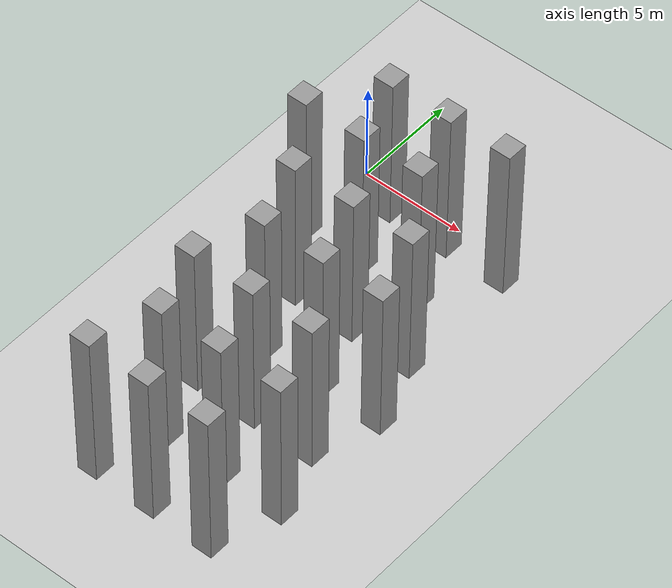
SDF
<sdf version="1.7">
 <world name="default">
  <model name="ground_plane">
   <static>1</static>
   <link name="link">
    <collision name="collision">
     <geometry><plane><normal>0 0 1</normal><size>100 100</size></plane></geometry>
     <surface>
      <contact><collide_bitmask>65535</collide_bitmask></contact>
      <friction><ode><mu>100</mu><mu2>50</mu2></ode></friction>
     </surface>
    </collision>
    <visual name="visual">
     <cast_shadows>0</cast_shadows>
     <geometry><plane><normal>0 0 1</normal><size>100 100</size></plane></geometry>
     <material>
      <script><uri>file://media/materials/scripts/gazebo.material</uri><name>Gazebo/Grey</name></script>
     </material>
    </visual>
   </link>
  </model>
  <model name="unit_box_static7">
   <link name="link">
    <inertial>
     <mass>1</mass>
     <inertia>
      <ixx>0.166667</ixx>
      <ixy>0</ixy>
      <ixz>0</ixz>
      <iyy>0.166667</iyy>
      <iyz>0</iyz>
      <izz>0.166667</izz>
     </inertia>
    </inertial>
    <visual name="visual">
     <geometry><box><size>1 1 8</size></box></geometry>
     <material>
      <script><name>Gazebo/Grey</name><uri>file://media/materials/scripts/gazebo.material</uri></script>
      <shader type="pixel"/>
     </material>
    </visual>
    <collision name="collision">
     <geometry><box><size>1 1 8</size></box></geometry>
     <surface>
      <friction>
       <ode><mu>1</mu><mu2>1</mu2><fdir1>0 0 0</fdir1><slip1>0</slip1><slip2>0</slip2></ode>
       <torsional>
        <coefficient>1</coefficient>
        <patch_radius>0</patch_radius>
        <surface_radius>0</surface_radius>
        <use_patch_radius>1</use_patch_radius>
        <ode><slip>0</slip></ode>
       </torsional>
      </friction>
      <bounce><restitution_coefficient>0</restitution_coefficient><threshold>1e+06</threshold></bounce>
      <contact>
       <collide_without_contact>0</collide_without_contact>
       <collide_without_contact_bitmask>1</collide_without_contact_bitmask>
       <collide_bitmask>1</collide_bitmask>
       <ode>
        <soft_cfm>0</soft_cfm>
        <soft_erp>0.2</soft_erp>
        <kp>1e+13</kp>
        <kd>1</kd>
        <max_vel>0.01</max_vel>
        <min_depth>0</min_depth>
       </ode>
       <bullet>
        <split_impulse>1</split_impulse>
        <split_impulse_penetration_threshold>-0.01</split_impulse_penetration_threshold>
        <soft_cfm>0</soft_cfm>
        <soft_erp>0.2</soft_erp>
        <kp>1e+13</kp>
        <kd>1</kd>
       </bullet>
      </contact>
     </surface>
    </collision>
   </link>
   <static>1</static>
   <pose>2 -19 4 0 -0 0</pose>
  </model>
  <model name="unit_box_static8">
   <link name="link">
    <inertial>
     <mass>1</mass>
     <inertia>
      <ixx>0.166667</ixx>
      <ixy>0</ixy>
      <ixz>0</ixz>
      <iyy>0.166667</iyy>
      <iyz>0</iyz>
      <izz>0.166667</izz>
     </inertia>
    </inertial>
    <visual name="visual">
     <geometry><box><size>1 1 8</size></box></geometry>
     <material>
      <script><name>Gazebo/Grey</name><uri>file://media/materials/scripts/gazebo.material</uri></script>
      <shader type="pixel"/>
     </material>
    </visual>
    <collision name="collision">
     <geometry><box><size>1 1 8</size></box></geometry>
     <surface>
      <friction>
       <ode><mu>1</mu><mu2>1</mu2><fdir1>0 0 0</fdir1><slip1>0</slip1><slip2>0</slip2></ode>
       <torsional>
        <coefficient>1</coefficient>
        <patch_radius>0</patch_radius>
        <surface_radius>0</surface_radius>
        <use_patch_radius>1</use_patch_radius>
        <ode><slip>0</slip></ode>
       </torsional>
      </friction>
      <bounce><restitution_coefficient>0</restitution_coefficient><threshold>1e+06</threshold></bounce>
      <contact>
       <collide_without_contact>0</collide_without_contact>
       <collide_without_contact_bitmask>1</collide_without_contact_bitmask>
       <collide_bitmask>1</collide_bitmask>
       <ode>
        <soft_cfm>0</soft_cfm>
        <soft_erp>0.2</soft_erp>
        <kp>1e+13</kp>
        <kd>1</kd>
        <max_vel>0.01</max_vel>
        <min_depth>0</min_depth>
       </ode>
       <bullet>
        <split_impulse>1</split_impulse>
        <split_impulse_penetration_threshold>-0.01</split_impulse_penetration_threshold>
        <soft_cfm>0</soft_cfm>
        <soft_erp>0.2</soft_erp>
        <kp>1e+13</kp>
        <kd>1</kd>
       </bullet>
      </contact>
     </surface>
    </collision>
   </link>
   <static>1</static>
   <pose>5 -19 4 0 -0 0</pose>
  </model>
  <model name="unit_box_static9">
   <link name="link">
    <inertial>
     <mass>1</mass>
     <inertia>
      <ixx>0.166667</ixx>
      <ixy>0</ixy>
      <ixz>0</ixz>
      <iyy>0.166667</iyy>
      <iyz>0</iyz>
      <izz>0.166667</izz>
     </inertia>
    </inertial>
    <visual name="visual">
     <geometry><box><size>1 1 8</size></box></geometry>
     <material>
      <script><name>Gazebo/Grey</name><uri>file://media/materials/scripts/gazebo.material</uri></script>
      <shader type="pixel"/>
     </material>
    </visual>
    <collision name="collision">
     <geometry><box><size>1 1 8</size></box></geometry>
     <surface>
      <friction>
       <ode><mu>1</mu><mu2>1</mu2><fdir1>0 0 0</fdir1><slip1>0</slip1><slip2>0</slip2></ode>
       <torsional>
        <coefficient>1</coefficient>
        <patch_radius>0</patch_radius>
        <surface_radius>0</surface_radius>
        <use_patch_radius>1</use_patch_radius>
        <ode><slip>0</slip></ode>
       </torsional>
      </friction>
      <bounce><restitution_coefficient>0</restitution_coefficient><threshold>1e+06</threshold></bounce>
      <contact>
       <collide_without_contact>0</collide_without_contact>
       <collide_without_contact_bitmask>1</collide_without_contact_bitmask>
       <collide_bitmask>1</collide_bitmask>
       <ode>
        <soft_cfm>0</soft_cfm>
        <soft_erp>0.2</soft_erp>
        <kp>1e+13</kp>
        <kd>1</kd>
        <max_vel>0.01</max_vel>
        <min_depth>0</min_depth>
       </ode>
       <bullet>
        <split_impulse>1</split_impulse>
        <split_impulse_penetration_threshold>-0.01</split_impulse_penetration_threshold>
        <soft_cfm>0</soft_cfm>
        <soft_erp>0.2</soft_erp>
        <kp>1e+13</kp>
        <kd>1</kd>
       </bullet>
      </contact>
     </surface>
    </collision>
   </link>
   <static>1</static>
   <pose>8 -19 4 0 -0 0</pose>
  </model>
  <model name="unit_box_static20">
   <link name="link">
    <inertial>
     <mass>1</mass>
     <inertia>
      <ixx>0.166667</ixx>
      <ixy>0</ixy>
      <ixz>0</ixz>
      <iyy>0.166667</iyy>
      <iyz>0</iyz>
      <izz>0.166667</izz>
     </inertia>
    </inertial>
    <visual name="visual">
     <geometry><box><size>1 1 8</size></box></geometry>
     <material>
      <script><name>Gazebo/Grey</name><uri>file://media/materials/scripts/gazebo.material</uri></script>
      <shader type="pixel"/>
     </material>
    </visual>
    <collision name="collision">
     <geometry><box><size>1 1 8</size></box></geometry>
     <surface>
      <friction>
       <ode><mu>1</mu><mu2>1</mu2><fdir1>0 0 0</fdir1><slip1>0</slip1><slip2>0</slip2></ode>
       <torsional>
        <coefficient>1</coefficient>
        <patch_radius>0</patch_radius>
        <surface_radius>0</surface_radius>
        <use_patch_radius>1</use_patch_radius>
        <ode><slip>0</slip></ode>
       </torsional>
      </friction>
      <bounce><restitution_coefficient>0</restitution_coefficient><threshold>1e+06</threshold></bounce>
      <contact>
       <collide_without_contact>0</collide_without_contact>
       <collide_without_contact_bitmask>1</collide_without_contact_bitmask>
       <collide_bitmask>1</collide_bitmask>
       <ode>
        <soft_cfm>0</soft_cfm>
        <soft_erp>0.2</soft_erp>
        <kp>1e+13</kp>
        <kd>1</kd>
        <max_vel>0.01</max_vel>
        <min_depth>0</min_depth>
       </ode>
       <bullet>
        <split_impulse>1</split_impulse>
        <split_impulse_penetration_threshold>-0.01</split_impulse_penetration_threshold>
        <soft_cfm>0</soft_cfm>
        <soft_erp>0.2</soft_erp>
        <kp>1e+13</kp>
        <kd>1</kd>
       </bullet>
      </contact>
     </surface>
    </collision>
   </link>
   <static>1</static>
   <pose>3 -16 4 0 -0 0</pose>
  </model>
  <model name="unit_box_static21">
   <link name="link">
    <inertial>
     <mass>1</mass>
     <inertia>
      <ixx>0.166667</ixx>
      <ixy>0</ixy>
      <ixz>0</ixz>
      <iyy>0.166667</iyy>
      <iyz>0</iyz>
      <izz>0.166667</izz>
     </inertia>
    </inertial>
    <visual name="visual">
     <geometry><box><size>1 1 8</size></box></geometry>
     <material>
      <script><name>Gazebo/Grey</name><uri>file://media/materials/scripts/gazebo.material</uri></script>
      <shader type="pixel"/>
     </material>
    </visual>
    <collision name="collision">
     <geometry><box><size>1 1 8</size></box></geometry>
     <surface>
      <friction>
       <ode><mu>1</mu><mu2>1</mu2><fdir1>0 0 0</fdir1><slip1>0</slip1><slip2>0</slip2></ode>
       <torsional>
        <coefficient>1</coefficient>
        <patch_radius>0</patch_radius>
        <surface_radius>0</surface_radius>
        <use_patch_radius>1</use_patch_radius>
        <ode><slip>0</slip></ode>
       </torsional>
      </friction>
      <bounce><restitution_coefficient>0</restitution_coefficient><threshold>1e+06</threshold></bounce>
      <contact>
       <collide_without_contact>0</collide_without_contact>
       <collide_without_contact_bitmask>1</collide_without_contact_bitmask>
       <collide_bitmask>1</collide_bitmask>
       <ode>
        <soft_cfm>0</soft_cfm>
        <soft_erp>0.2</soft_erp>
        <kp>1e+13</kp>
        <kd>1</kd>
        <max_vel>0.01</max_vel>
        <min_depth>0</min_depth>
       </ode>
       <bullet>
        <split_impulse>1</split_impulse>
        <split_impulse_penetration_threshold>-0.01</split_impulse_penetration_threshold>
        <soft_cfm>0</soft_cfm>
        <soft_erp>0.2</soft_erp>
        <kp>1e+13</kp>
        <kd>1</kd>
       </bullet>
      </contact>
     </surface>
    </collision>
   </link>
   <static>1</static>
   <pose>6 -16 4 0 -0 0</pose>
  </model>
  <model name="unit_box_static22">
   <link name="link">
    <inertial>
     <mass>1</mass>
     <inertia>
      <ixx>0.166667</ixx>
      <ixy>0</ixy>
      <ixz>0</ixz>
      <iyy>0.166667</iyy>
      <iyz>0</iyz>
      <izz>0.166667</izz>
     </inertia>
    </inertial>
    <visual name="visual">
     <geometry><box><size>1 1 8</size></box></geometry>
     <material>
      <script><name>Gazebo/Grey</name><uri>file://media/materials/scripts/gazebo.material</uri></script>
      <shader type="pixel"/>
     </material>
    </visual>
    <collision name="collision">
     <geometry><box><size>1 1 8</size></box></geometry>
     <surface>
      <friction>
       <ode><mu>1</mu><mu2>1</mu2><fdir1>0 0 0</fdir1><slip1>0</slip1><slip2>0</slip2></ode>
       <torsional>
        <coefficient>1</coefficient>
        <patch_radius>0</patch_radius>
        <surface_radius>0</surface_radius>
        <use_patch_radius>1</use_patch_radius>
        <ode><slip>0</slip></ode>
       </torsional>
      </friction>
      <bounce><restitution_coefficient>0</restitution_coefficient><threshold>1e+06</threshold></bounce>
      <contact>
       <collide_without_contact>0</collide_without_contact>
       <collide_without_contact_bitmask>1</collide_without_contact_bitmask>
       <collide_bitmask>1</collide_bitmask>
       <ode>
        <soft_cfm>0</soft_cfm>
        <soft_erp>0.2</soft_erp>
        <kp>1e+13</kp>
        <kd>1</kd>
        <max_vel>0.01</max_vel>
        <min_depth>0</min_depth>
       </ode>
       <bullet>
        <split_impulse>1</split_impulse>
        <split_impulse_penetration_threshold>-0.01</split_impulse_penetration_threshold>
        <soft_cfm>0</soft_cfm>
        <soft_erp>0.2</soft_erp>
        <kp>1e+13</kp>
        <kd>1</kd>
       </bullet>
      </contact>
     </surface>
    </collision>
   </link>
   <static>1</static>
   <pose>9 -16 4 0 -0 0</pose>
  </model>
  <model name="unit_box_static32">
   <link name="link">
    <inertial>
     <mass>1</mass>
     <inertia>
      <ixx>0.166667</ixx>
      <ixy>0</ixy>
      <ixz>0</ixz>
      <iyy>0.166667</iyy>
      <iyz>0</iyz>
      <izz>0.166667</izz>
     </inertia>
    </inertial>
    <visual name="visual">
     <geometry><box><size>1 1 8</size></box></geometry>
     <material>
      <script><name>Gazebo/Grey</name><uri>file://media/materials/scripts/gazebo.material</uri></script>
      <shader type="pixel"/>
     </material>
    </visual>
    <collision name="collision">
     <geometry><box><size>1 1 8</size></box></geometry>
     <surface>
      <friction>
       <ode><mu>1</mu><mu2>1</mu2><fdir1>0 0 0</fdir1><slip1>0</slip1><slip2>0</slip2></ode>
       <torsional>
        <coefficient>1</coefficient>
        <patch_radius>0</patch_radius>
        <surface_radius>0</surface_radius>
        <use_patch_radius>1</use_patch_radius>
        <ode><slip>0</slip></ode>
       </torsional>
      </friction>
      <bounce><restitution_coefficient>0</restitution_coefficient><threshold>1e+06</threshold></bounce>
      <contact>
       <collide_without_contact>0</collide_without_contact>
       <collide_without_contact_bitmask>1</collide_without_contact_bitmask>
       <collide_bitmask>1</collide_bitmask>
       <ode>
        <soft_cfm>0</soft_cfm>
        <soft_erp>0.2</soft_erp>
        <kp>1e+13</kp>
        <kd>1</kd>
        <max_vel>0.01</max_vel>
        <min_depth>0</min_depth>
       </ode>
       <bullet>
        <split_impulse>1</split_impulse>
        <split_impulse_penetration_threshold>-0.01</split_impulse_penetration_threshold>
        <soft_cfm>0</soft_cfm>
        <soft_erp>0.2</soft_erp>
        <kp>1e+13</kp>
        <kd>1</kd>
       </bullet>
      </contact>
     </surface>
    </collision>
   </link>
   <static>1</static>
   <pose>2 -13 4 0 -0 0</pose>
  </model>
  <model name="unit_box_static33">
   <link name="link">
    <inertial>
     <mass>1</mass>
     <inertia>
      <ixx>0.166667</ixx>
      <ixy>0</ixy>
      <ixz>0</ixz>
      <iyy>0.166667</iyy>
      <iyz>0</iyz>
      <izz>0.166667</izz>
     </inertia>
    </inertial>
    <visual name="visual">
     <geometry><box><size>1 1 8</size></box></geometry>
     <material>
      <script><name>Gazebo/Grey</name><uri>file://media/materials/scripts/gazebo.material</uri></script>
      <shader type="pixel"/>
     </material>
    </visual>
    <collision name="collision">
     <geometry><box><size>1 1 8</size></box></geometry>
     <surface>
      <friction>
       <ode><mu>1</mu><mu2>1</mu2><fdir1>0 0 0</fdir1><slip1>0</slip1><slip2>0</slip2></ode>
       <torsional>
        <coefficient>1</coefficient>
        <patch_radius>0</patch_radius>
        <surface_radius>0</surface_radius>
        <use_patch_radius>1</use_patch_radius>
        <ode><slip>0</slip></ode>
       </torsional>
      </friction>
      <bounce><restitution_coefficient>0</restitution_coefficient><threshold>1e+06</threshold></bounce>
      <contact>
       <collide_without_contact>0</collide_without_contact>
       <collide_without_contact_bitmask>1</collide_without_contact_bitmask>
       <collide_bitmask>1</collide_bitmask>
       <ode>
        <soft_cfm>0</soft_cfm>
        <soft_erp>0.2</soft_erp>
        <kp>1e+13</kp>
        <kd>1</kd>
        <max_vel>0.01</max_vel>
        <min_depth>0</min_depth>
       </ode>
       <bullet>
        <split_impulse>1</split_impulse>
        <split_impulse_penetration_threshold>-0.01</split_impulse_penetration_threshold>
        <soft_cfm>0</soft_cfm>
        <soft_erp>0.2</soft_erp>
        <kp>1e+13</kp>
        <kd>1</kd>
       </bullet>
      </contact>
     </surface>
    </collision>
   </link>
   <static>1</static>
   <pose>5 -13 4 0 -0 0</pose>
  </model>
  <model name="unit_box_static34">
   <link name="link">
    <inertial>
     <mass>1</mass>
     <inertia>
      <ixx>0.166667</ixx>
      <ixy>0</ixy>
      <ixz>0</ixz>
      <iyy>0.166667</iyy>
      <iyz>0</iyz>
      <izz>0.166667</izz>
     </inertia>
    </inertial>
    <visual name="visual">
     <geometry><box><size>1 1 8</size></box></geometry>
     <material>
      <script><name>Gazebo/Grey</name><uri>file://media/materials/scripts/gazebo.material</uri></script>
      <shader type="pixel"/>
     </material>
    </visual>
    <collision name="collision">
     <geometry><box><size>1 1 8</size></box></geometry>
     <surface>
      <friction>
       <ode><mu>1</mu><mu2>1</mu2><fdir1>0 0 0</fdir1><slip1>0</slip1><slip2>0</slip2></ode>
       <torsional>
        <coefficient>1</coefficient>
        <patch_radius>0</patch_radius>
        <surface_radius>0</surface_radius>
        <use_patch_radius>1</use_patch_radius>
        <ode><slip>0</slip></ode>
       </torsional>
      </friction>
      <bounce><restitution_coefficient>0</restitution_coefficient><threshold>1e+06</threshold></bounce>
      <contact>
       <collide_without_contact>0</collide_without_contact>
       <collide_without_contact_bitmask>1</collide_without_contact_bitmask>
       <collide_bitmask>1</collide_bitmask>
       <ode>
        <soft_cfm>0</soft_cfm>
        <soft_erp>0.2</soft_erp>
        <kp>1e+13</kp>
        <kd>1</kd>
        <max_vel>0.01</max_vel>
        <min_depth>0</min_depth>
       </ode>
       <bullet>
        <split_impulse>1</split_impulse>
        <split_impulse_penetration_threshold>-0.01</split_impulse_penetration_threshold>
        <soft_cfm>0</soft_cfm>
        <soft_erp>0.2</soft_erp>
        <kp>1e+13</kp>
        <kd>1</kd>
       </bullet>
      </contact>
     </surface>
    </collision>
   </link>
   <static>1</static>
   <pose>8 -13 4 0 -0 0</pose>
  </model>
  <model name="unit_box_static45">
   <link name="link">
    <inertial>
     <mass>1</mass>
     <inertia>
      <ixx>0.166667</ixx>
      <ixy>0</ixy>
      <ixz>0</ixz>
      <iyy>0.166667</iyy>
      <iyz>0</iyz>
      <izz>0.166667</izz>
     </inertia>
    </inertial>
    <visual name="visual">
     <geometry><box><size>1 1 8</size></box></geometry>
     <material>
      <script><name>Gazebo/Grey</name><uri>file://media/materials/scripts/gazebo.material</uri></script>
      <shader type="pixel"/>
     </material>
    </visual>
    <collision name="collision">
     <geometry><box><size>1 1 8</size></box></geometry>
     <surface>
      <friction>
       <ode><mu>1</mu><mu2>1</mu2><fdir1>0 0 0</fdir1><slip1>0</slip1><slip2>0</slip2></ode>
       <torsional>
        <coefficient>1</coefficient>
        <patch_radius>0</patch_radius>
        <surface_radius>0</surface_radius>
        <use_patch_radius>1</use_patch_radius>
        <ode><slip>0</slip></ode>
       </torsional>
      </friction>
      <bounce><restitution_coefficient>0</restitution_coefficient><threshold>1e+06</threshold></bounce>
      <contact>
       <collide_without_contact>0</collide_without_contact>
       <collide_without_contact_bitmask>1</collide_without_contact_bitmask>
       <collide_bitmask>1</collide_bitmask>
       <ode>
        <soft_cfm>0</soft_cfm>
        <soft_erp>0.2</soft_erp>
        <kp>1e+13</kp>
        <kd>1</kd>
        <max_vel>0.01</max_vel>
        <min_depth>0</min_depth>
       </ode>
       <bullet>
        <split_impulse>1</split_impulse>
        <split_impulse_penetration_threshold>-0.01</split_impulse_penetration_threshold>
        <soft_cfm>0</soft_cfm>
        <soft_erp>0.2</soft_erp>
        <kp>1e+13</kp>
        <kd>1</kd>
       </bullet>
      </contact>
     </surface>
    </collision>
   </link>
   <static>1</static>
   <pose>3 -10 4 0 -0 0</pose>
  </model>
  <model name="unit_box_static46">
   <link name="link">
    <inertial>
     <mass>1</mass>
     <inertia>
      <ixx>0.166667</ixx>
      <ixy>0</ixy>
      <ixz>0</ixz>
      <iyy>0.166667</iyy>
      <iyz>0</iyz>
      <izz>0.166667</izz>
     </inertia>
    </inertial>
    <visual name="visual">
     <geometry><box><size>1 1 8</size></box></geometry>
     <material>
      <script><name>Gazebo/Grey</name><uri>file://media/materials/scripts/gazebo.material</uri></script>
      <shader type="pixel"/>
     </material>
    </visual>
    <collision name="collision">
     <geometry><box><size>1 1 8</size></box></geometry>
     <surface>
      <friction>
       <ode><mu>1</mu><mu2>1</mu2><fdir1>0 0 0</fdir1><slip1>0</slip1><slip2>0</slip2></ode>
       <torsional>
        <coefficient>1</coefficient>
        <patch_radius>0</patch_radius>
        <surface_radius>0</surface_radius>
        <use_patch_radius>1</use_patch_radius>
        <ode><slip>0</slip></ode>
       </torsional>
      </friction>
      <bounce><restitution_coefficient>0</restitution_coefficient><threshold>1e+06</threshold></bounce>
      <contact>
       <collide_without_contact>0</collide_without_contact>
       <collide_without_contact_bitmask>1</collide_without_contact_bitmask>
       <collide_bitmask>1</collide_bitmask>
       <ode>
        <soft_cfm>0</soft_cfm>
        <soft_erp>0.2</soft_erp>
        <kp>1e+13</kp>
        <kd>1</kd>
        <max_vel>0.01</max_vel>
        <min_depth>0</min_depth>
       </ode>
       <bullet>
        <split_impulse>1</split_impulse>
        <split_impulse_penetration_threshold>-0.01</split_impulse_penetration_threshold>
        <soft_cfm>0</soft_cfm>
        <soft_erp>0.2</soft_erp>
        <kp>1e+13</kp>
        <kd>1</kd>
       </bullet>
      </contact>
     </surface>
    </collision>
   </link>
   <static>1</static>
   <pose>6 -10 4 0 -0 0</pose>
  </model>
  <model name="unit_box_static47">
   <link name="link">
    <inertial>
     <mass>1</mass>
     <inertia>
      <ixx>0.166667</ixx>
      <ixy>0</ixy>
      <ixz>0</ixz>
      <iyy>0.166667</iyy>
      <iyz>0</iyz>
      <izz>0.166667</izz>
     </inertia>
    </inertial>
    <visual name="visual">
     <geometry><box><size>1 1 8</size></box></geometry>
     <material>
      <script><name>Gazebo/Grey</name><uri>file://media/materials/scripts/gazebo.material</uri></script>
      <shader type="pixel"/>
     </material>
    </visual>
    <collision name="collision">
     <geometry><box><size>1 1 8</size></box></geometry>
     <surface>
      <friction>
       <ode><mu>1</mu><mu2>1</mu2><fdir1>0 0 0</fdir1><slip1>0</slip1><slip2>0</slip2></ode>
       <torsional>
        <coefficient>1</coefficient>
        <patch_radius>0</patch_radius>
        <surface_radius>0</surface_radius>
        <use_patch_radius>1</use_patch_radius>
        <ode><slip>0</slip></ode>
       </torsional>
      </friction>
      <bounce><restitution_coefficient>0</restitution_coefficient><threshold>1e+06</threshold></bounce>
      <contact>
       <collide_without_contact>0</collide_without_contact>
       <collide_without_contact_bitmask>1</collide_without_contact_bitmask>
       <collide_bitmask>1</collide_bitmask>
       <ode>
        <soft_cfm>0</soft_cfm>
        <soft_erp>0.2</soft_erp>
        <kp>1e+13</kp>
        <kd>1</kd>
        <max_vel>0.01</max_vel>
        <min_depth>0</min_depth>
       </ode>
       <bullet>
        <split_impulse>1</split_impulse>
        <split_impulse_penetration_threshold>-0.01</split_impulse_penetration_threshold>
        <soft_cfm>0</soft_cfm>
        <soft_erp>0.2</soft_erp>
        <kp>1e+13</kp>
        <kd>1</kd>
       </bullet>
      </contact>
     </surface>
    </collision>
   </link>
   <static>1</static>
   <pose>9 -10 4 0 -0 0</pose>
  </model>
  <model name="unit_box_static57">
   <link name="link">
    <inertial>
     <mass>1</mass>
     <inertia>
      <ixx>0.166667</ixx>
      <ixy>0</ixy>
      <ixz>0</ixz>
      <iyy>0.166667</iyy>
      <iyz>0</iyz>
      <izz>0.166667</izz>
     </inertia>
    </inertial>
    <visual name="visual">
     <geometry><box><size>1 1 8</size></box></geometry>
     <material>
      <script><name>Gazebo/Grey</name><uri>file://media/materials/scripts/gazebo.material</uri></script>
      <shader type="pixel"/>
     </material>
    </visual>
    <collision name="collision">
     <geometry><box><size>1 1 8</size></box></geometry>
     <surface>
      <friction>
       <ode><mu>1</mu><mu2>1</mu2><fdir1>0 0 0</fdir1><slip1>0</slip1><slip2>0</slip2></ode>
       <torsional>
        <coefficient>1</coefficient>
        <patch_radius>0</patch_radius>
        <surface_radius>0</surface_radius>
        <use_patch_radius>1</use_patch_radius>
        <ode><slip>0</slip></ode>
       </torsional>
      </friction>
      <bounce><restitution_coefficient>0</restitution_coefficient><threshold>1e+06</threshold></bounce>
      <contact>
       <collide_without_contact>0</collide_without_contact>
       <collide_without_contact_bitmask>1</collide_without_contact_bitmask>
       <collide_bitmask>1</collide_bitmask>
       <ode>
        <soft_cfm>0</soft_cfm>
        <soft_erp>0.2</soft_erp>
        <kp>1e+13</kp>
        <kd>1</kd>
        <max_vel>0.01</max_vel>
        <min_depth>0</min_depth>
       </ode>
       <bullet>
        <split_impulse>1</split_impulse>
        <split_impulse_penetration_threshold>-0.01</split_impulse_penetration_threshold>
        <soft_cfm>0</soft_cfm>
        <soft_erp>0.2</soft_erp>
        <kp>1e+13</kp>
        <kd>1</kd>
       </bullet>
      </contact>
     </surface>
    </collision>
   </link>
   <static>1</static>
   <pose>2 -7 4 0 -0 0</pose>
  </model>
  <model name="unit_box_static58">
   <link name="link">
    <inertial>
     <mass>1</mass>
     <inertia>
      <ixx>0.166667</ixx>
      <ixy>0</ixy>
      <ixz>0</ixz>
      <iyy>0.166667</iyy>
      <iyz>0</iyz>
      <izz>0.166667</izz>
     </inertia>
    </inertial>
    <visual name="visual">
     <geometry><box><size>1 1 8</size></box></geometry>
     <material>
      <script><name>Gazebo/Grey</name><uri>file://media/materials/scripts/gazebo.material</uri></script>
      <shader type="pixel"/>
     </material>
    </visual>
    <collision name="collision">
     <geometry><box><size>1 1 8</size></box></geometry>
     <surface>
      <friction>
       <ode><mu>1</mu><mu2>1</mu2><fdir1>0 0 0</fdir1><slip1>0</slip1><slip2>0</slip2></ode>
       <torsional>
        <coefficient>1</coefficient>
        <patch_radius>0</patch_radius>
        <surface_radius>0</surface_radius>
        <use_patch_radius>1</use_patch_radius>
        <ode><slip>0</slip></ode>
       </torsional>
      </friction>
      <bounce><restitution_coefficient>0</restitution_coefficient><threshold>1e+06</threshold></bounce>
      <contact>
       <collide_without_contact>0</collide_without_contact>
       <collide_without_contact_bitmask>1</collide_without_contact_bitmask>
       <collide_bitmask>1</collide_bitmask>
       <ode>
        <soft_cfm>0</soft_cfm>
        <soft_erp>0.2</soft_erp>
        <kp>1e+13</kp>
        <kd>1</kd>
        <max_vel>0.01</max_vel>
        <min_depth>0</min_depth>
       </ode>
       <bullet>
        <split_impulse>1</split_impulse>
        <split_impulse_penetration_threshold>-0.01</split_impulse_penetration_threshold>
        <soft_cfm>0</soft_cfm>
        <soft_erp>0.2</soft_erp>
        <kp>1e+13</kp>
        <kd>1</kd>
       </bullet>
      </contact>
     </surface>
    </collision>
   </link>
   <static>1</static>
   <pose>5 -7 4 0 -0 0</pose>
  </model>
  <model name="unit_box_static59">
   <link name="link">
    <inertial>
     <mass>1</mass>
     <inertia>
      <ixx>0.166667</ixx>
      <ixy>0</ixy>
      <ixz>0</ixz>
      <iyy>0.166667</iyy>
      <iyz>0</iyz>
      <izz>0.166667</izz>
     </inertia>
    </inertial>
    <visual name="visual">
     <geometry><box><size>1 1 8</size></box></geometry>
     <material>
      <script><name>Gazebo/Grey</name><uri>file://media/materials/scripts/gazebo.material</uri></script>
      <shader type="pixel"/>
     </material>
    </visual>
    <collision name="collision">
     <geometry><box><size>1 1 8</size></box></geometry>
     <surface>
      <friction>
       <ode><mu>1</mu><mu2>1</mu2><fdir1>0 0 0</fdir1><slip1>0</slip1><slip2>0</slip2></ode>
       <torsional>
        <coefficient>1</coefficient>
        <patch_radius>0</patch_radius>
        <surface_radius>0</surface_radius>
        <use_patch_radius>1</use_patch_radius>
        <ode><slip>0</slip></ode>
       </torsional>
      </friction>
      <bounce><restitution_coefficient>0</restitution_coefficient><threshold>1e+06</threshold></bounce>
      <contact>
       <collide_without_contact>0</collide_without_contact>
       <collide_without_contact_bitmask>1</collide_without_contact_bitmask>
       <collide_bitmask>1</collide_bitmask>
       <ode>
        <soft_cfm>0</soft_cfm>
        <soft_erp>0.2</soft_erp>
        <kp>1e+13</kp>
        <kd>1</kd>
        <max_vel>0.01</max_vel>
        <min_depth>0</min_depth>
       </ode>
       <bullet>
        <split_impulse>1</split_impulse>
        <split_impulse_penetration_threshold>-0.01</split_impulse_penetration_threshold>
        <soft_cfm>0</soft_cfm>
        <soft_erp>0.2</soft_erp>
        <kp>1e+13</kp>
        <kd>1</kd>
       </bullet>
      </contact>
     </surface>
    </collision>
   </link>
   <static>1</static>
   <pose>8 -7 4 0 -0 0</pose>
  </model>
  <model name="unit_box_static69">
   <link name="link">
    <inertial>
     <mass>1</mass>
     <inertia>
      <ixx>0.166667</ixx>
      <ixy>0</ixy>
      <ixz>0</ixz>
      <iyy>0.166667</iyy>
      <iyz>0</iyz>
      <izz>0.166667</izz>
     </inertia>
    </inertial>
    <visual name="visual">
     <geometry><box><size>1 1 8</size></box></geometry>
     <material>
      <script><name>Gazebo/Grey</name><uri>file://media/materials/scripts/gazebo.material</uri></script>
      <shader type="pixel"/>
     </material>
    </visual>
    <collision name="collision">
     <geometry><box><size>1 1 8</size></box></geometry>
     <surface>
      <friction>
       <ode><mu>1</mu><mu2>1</mu2><fdir1>0 0 0</fdir1><slip1>0</slip1><slip2>0</slip2></ode>
       <torsional>
        <coefficient>1</coefficient>
        <patch_radius>0</patch_radius>
        <surface_radius>0</surface_radius>
        <use_patch_radius>1</use_patch_radius>
        <ode><slip>0</slip></ode>
       </torsional>
      </friction>
      <bounce><restitution_coefficient>0</restitution_coefficient><threshold>1e+06</threshold></bounce>
      <contact>
       <collide_without_contact>0</collide_without_contact>
       <collide_without_contact_bitmask>1</collide_without_contact_bitmask>
       <collide_bitmask>1</collide_bitmask>
       <ode>
        <soft_cfm>0</soft_cfm>
        <soft_erp>0.2</soft_erp>
        <kp>1e+13</kp>
        <kd>1</kd>
        <max_vel>0.01</max_vel>
        <min_depth>0</min_depth>
       </ode>
       <bullet>
        <split_impulse>1</split_impulse>
        <split_impulse_penetration_threshold>-0.01</split_impulse_penetration_threshold>
        <soft_cfm>0</soft_cfm>
        <soft_erp>0.2</soft_erp>
        <kp>1e+13</kp>
        <kd>1</kd>
       </bullet>
      </contact>
     </surface>
    </collision>
   </link>
   <static>1</static>
   <pose>0 -4 4 0 -0 0</pose>
  </model>
  <model name="unit_box_static70">
   <link name="link">
    <inertial>
     <mass>1</mass>
     <inertia>
      <ixx>0.166667</ixx>
      <ixy>0</ixy>
      <ixz>0</ixz>
      <iyy>0.166667</iyy>
      <iyz>0</iyz>
      <izz>0.166667</izz>
     </inertia>
    </inertial>
    <visual name="visual">
     <geometry><box><size>1 1 8</size></box></geometry>
     <material>
      <script><name>Gazebo/Grey</name><uri>file://media/materials/scripts/gazebo.material</uri></script>
      <shader type="pixel"/>
     </material>
    </visual>
    <collision name="collision">
     <geometry><box><size>1 1 8</size></box></geometry>
     <surface>
      <friction>
       <ode><mu>1</mu><mu2>1</mu2><fdir1>0 0 0</fdir1><slip1>0</slip1><slip2>0</slip2></ode>
       <torsional>
        <coefficient>1</coefficient>
        <patch_radius>0</patch_radius>
        <surface_radius>0</surface_radius>
        <use_patch_radius>1</use_patch_radius>
        <ode><slip>0</slip></ode>
       </torsional>
      </friction>
      <bounce><restitution_coefficient>0</restitution_coefficient><threshold>1e+06</threshold></bounce>
      <contact>
       <collide_without_contact>0</collide_without_contact>
       <collide_without_contact_bitmask>1</collide_without_contact_bitmask>
       <collide_bitmask>1</collide_bitmask>
       <ode>
        <soft_cfm>0</soft_cfm>
        <soft_erp>0.2</soft_erp>
        <kp>1e+13</kp>
        <kd>1</kd>
        <max_vel>0.01</max_vel>
        <min_depth>0</min_depth>
       </ode>
       <bullet>
        <split_impulse>1</split_impulse>
        <split_impulse_penetration_threshold>-0.01</split_impulse_penetration_threshold>
        <soft_cfm>0</soft_cfm>
        <soft_erp>0.2</soft_erp>
        <kp>1e+13</kp>
        <kd>1</kd>
       </bullet>
      </contact>
     </surface>
    </collision>
   </link>
   <static>1</static>
   <pose>3 -4 4 0 -0 0</pose>
  </model>
  <model name="unit_box_static71">
   <link name="link">
    <inertial>
     <mass>1</mass>
     <inertia>
      <ixx>0.166667</ixx>
      <ixy>0</ixy>
      <ixz>0</ixz>
      <iyy>0.166667</iyy>
      <iyz>0</iyz>
      <izz>0.166667</izz>
     </inertia>
    </inertial>
    <visual name="visual">
     <geometry><box><size>1 1 8</size></box></geometry>
     <material>
      <script><name>Gazebo/Grey</name><uri>file://media/materials/scripts/gazebo.material</uri></script>
      <shader type="pixel"/>
     </material>
    </visual>
    <collision name="collision">
     <geometry><box><size>1 1 8</size></box></geometry>
     <surface>
      <friction>
       <ode><mu>1</mu><mu2>1</mu2><fdir1>0 0 0</fdir1><slip1>0</slip1><slip2>0</slip2></ode>
       <torsional>
        <coefficient>1</coefficient>
        <patch_radius>0</patch_radius>
        <surface_radius>0</surface_radius>
        <use_patch_radius>1</use_patch_radius>
        <ode><slip>0</slip></ode>
       </torsional>
      </friction>
      <bounce><restitution_coefficient>0</restitution_coefficient><threshold>1e+06</threshold></bounce>
      <contact>
       <collide_without_contact>0</collide_without_contact>
       <collide_without_contact_bitmask>1</collide_without_contact_bitmask>
       <collide_bitmask>1</collide_bitmask>
       <ode>
        <soft_cfm>0</soft_cfm>
        <soft_erp>0.2</soft_erp>
        <kp>1e+13</kp>
        <kd>1</kd>
        <max_vel>0.01</max_vel>
        <min_depth>0</min_depth>
       </ode>
       <bullet>
        <split_impulse>1</split_impulse>
        <split_impulse_penetration_threshold>-0.01</split_impulse_penetration_threshold>
        <soft_cfm>0</soft_cfm>
        <soft_erp>0.2</soft_erp>
        <kp>1e+13</kp>
        <kd>1</kd>
       </bullet>
      </contact>
     </surface>
    </collision>
   </link>
   <static>1</static>
   <pose>6 -4 4 0 -0 0</pose>
  </model>
  <model name="unit_box_static82">
   <link name="link">
    <inertial>
     <mass>1</mass>
     <inertia>
      <ixx>0.166667</ixx>
      <ixy>0</ixy>
      <ixz>0</ixz>
      <iyy>0.166667</iyy>
      <iyz>0</iyz>
      <izz>0.166667</izz>
     </inertia>
    </inertial>
    <visual name="visual">
     <geometry><box><size>1 1 8</size></box></geometry>
     <material>
      <script><name>Gazebo/Grey</name><uri>file://media/materials/scripts/gazebo.material</uri></script>
      <shader type="pixel"/>
     </material>
    </visual>
    <collision name="collision">
     <geometry><box><size>1 1 8</size></box></geometry>
     <surface>
      <friction>
       <ode><mu>1</mu><mu2>1</mu2><fdir1>0 0 0</fdir1><slip1>0</slip1><slip2>0</slip2></ode>
       <torsional>
        <coefficient>1</coefficient>
        <patch_radius>0</patch_radius>
        <surface_radius>0</surface_radius>
        <use_patch_radius>1</use_patch_radius>
        <ode><slip>0</slip></ode>
       </torsional>
      </friction>
      <bounce><restitution_coefficient>0</restitution_coefficient><threshold>1e+06</threshold></bounce>
      <contact>
       <collide_without_contact>0</collide_without_contact>
       <collide_without_contact_bitmask>1</collide_without_contact_bitmask>
       <collide_bitmask>1</collide_bitmask>
       <ode>
        <soft_cfm>0</soft_cfm>
        <soft_erp>0.2</soft_erp>
        <kp>1e+13</kp>
        <kd>1</kd>
        <max_vel>0.01</max_vel>
        <min_depth>0</min_depth>
       </ode>
       <bullet>
        <split_impulse>1</split_impulse>
        <split_impulse_penetration_threshold>-0.01</split_impulse_penetration_threshold>
        <soft_cfm>0</soft_cfm>
        <soft_erp>0.2</soft_erp>
        <kp>1e+13</kp>
        <kd>1</kd>
       </bullet>
      </contact>
     </surface>
    </collision>
   </link>
   <static>1</static>
   <pose>2 -1 4 0 -0 0</pose>
  </model>
  <model name="unit_box_static83">
   <link name="link">
    <inertial>
     <mass>1</mass>
     <inertia>
      <ixx>0.166667</ixx>
      <ixy>0</ixy>
      <ixz>0</ixz>
      <iyy>0.166667</iyy>
      <iyz>0</iyz>
      <izz>0.166667</izz>
     </inertia>
    </inertial>
    <visual name="visual">
     <geometry><box><size>1 1 8</size></box></geometry>
     <material>
      <script><name>Gazebo/Grey</name><uri>file://media/materials/scripts/gazebo.material</uri></script>
      <shader type="pixel"/>
     </material>
    </visual>
    <collision name="collision">
     <geometry><box><size>1 1 8</size></box></geometry>
     <surface>
      <friction>
       <ode><mu>1</mu><mu2>1</mu2><fdir1>0 0 0</fdir1><slip1>0</slip1><slip2>0</slip2></ode>
       <torsional>
        <coefficient>1</coefficient>
        <patch_radius>0</patch_radius>
        <surface_radius>0</surface_radius>
        <use_patch_radius>1</use_patch_radius>
        <ode><slip>0</slip></ode>
       </torsional>
      </friction>
      <bounce><restitution_coefficient>0</restitution_coefficient><threshold>1e+06</threshold></bounce>
      <contact>
       <collide_without_contact>0</collide_without_contact>
       <collide_without_contact_bitmask>1</collide_without_contact_bitmask>
       <collide_bitmask>1</collide_bitmask>
       <ode>
        <soft_cfm>0</soft_cfm>
        <soft_erp>0.2</soft_erp>
        <kp>1e+13</kp>
        <kd>1</kd>
        <max_vel>0.01</max_vel>
        <min_depth>0</min_depth>
       </ode>
       <bullet>
        <split_impulse>1</split_impulse>
        <split_impulse_penetration_threshold>-0.01</split_impulse_penetration_threshold>
        <soft_cfm>0</soft_cfm>
        <soft_erp>0.2</soft_erp>
        <kp>1e+13</kp>
        <kd>1</kd>
       </bullet>
      </contact>
     </surface>
    </collision>
   </link>
   <static>1</static>
   <pose>5 -1 4 0 -0 0</pose>
  </model>
  <model name="unit_box_static84">
   <link name="link">
    <inertial>
     <mass>1</mass>
     <inertia>
      <ixx>0.166667</ixx>
      <ixy>0</ixy>
      <ixz>0</ixz>
      <iyy>0.166667</iyy>
      <iyz>0</iyz>
      <izz>0.166667</izz>
     </inertia>
    </inertial>
    <visual name="visual">
     <geometry><box><size>1 1 8</size></box></geometry>
     <material>
      <script><name>Gazebo/Grey</name><uri>file://media/materials/scripts/gazebo.material</uri></script>
      <shader type="pixel"/>
     </material>
    </visual>
    <collision name="collision">
     <geometry><box><size>1 1 8</size></box></geometry>
     <surface>
      <friction>
       <ode><mu>1</mu><mu2>1</mu2><fdir1>0 0 0</fdir1><slip1>0</slip1><slip2>0</slip2></ode>
       <torsional>
        <coefficient>1</coefficient>
        <patch_radius>0</patch_radius>
        <surface_radius>0</surface_radius>
        <use_patch_radius>1</use_patch_radius>
        <ode><slip>0</slip></ode>
       </torsional>
      </friction>
      <bounce><restitution_coefficient>0</restitution_coefficient><threshold>1e+06</threshold></bounce>
      <contact>
       <collide_without_contact>0</collide_without_contact>
       <collide_without_contact_bitmask>1</collide_without_contact_bitmask>
       <collide_bitmask>1</collide_bitmask>
       <ode>
        <soft_cfm>0</soft_cfm>
        <soft_erp>0.2</soft_erp>
        <kp>1e+13</kp>
        <kd>1</kd>
        <max_vel>0.01</max_vel>
        <min_depth>0</min_depth>
       </ode>
       <bullet>
        <split_impulse>1</split_impulse>
        <split_impulse_penetration_threshold>-0.01</split_impulse_penetration_threshold>
        <soft_cfm>0</soft_cfm>
        <soft_erp>0.2</soft_erp>
        <kp>1e+13</kp>
        <kd>1</kd>
       </bullet>
      </contact>
     </surface>
    </collision>
   </link>
   <static>1</static>
   <pose>8 -1 4 0 -0 0</pose>
  </model>
 </world>
</sdf>
